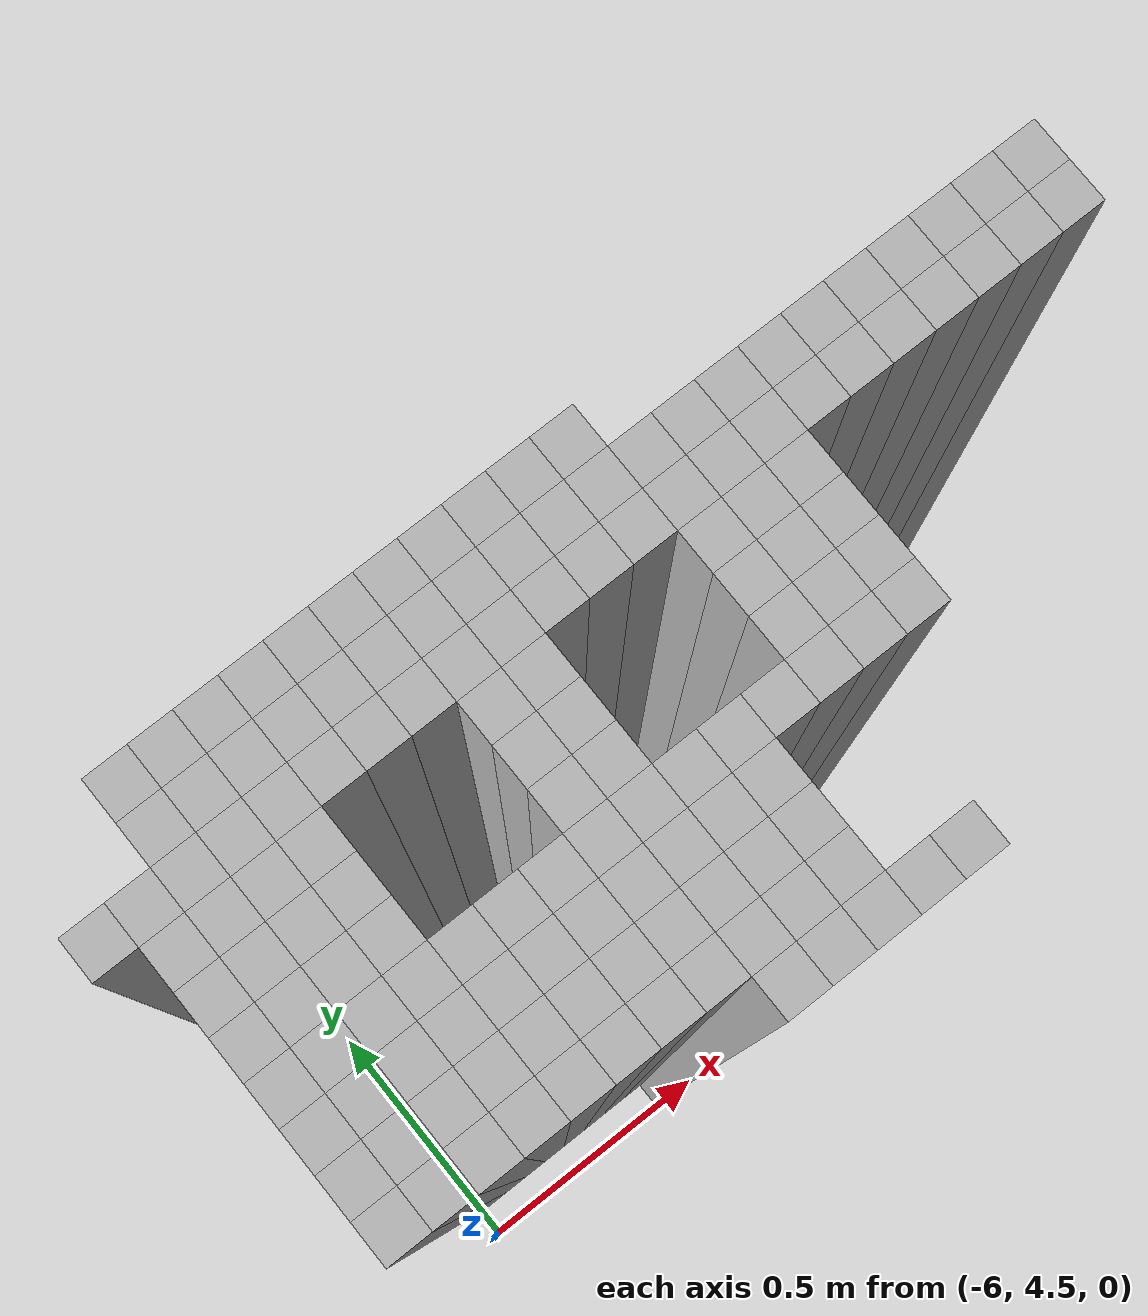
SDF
<sdf version="1.9">
 <world name="map_world">
  <model name="wall_105_53">
   <static>true</static>
   <pose>-5.911 5.030 1.250 0 0 0</pose>
   <link name="link">
    <collision name="collision"><geometry><box><size>0.050 0.050 2.500</size></box></geometry></collision>
    <visual name="visual"><geometry><box><size>0.050 0.050 2.500</size></box></geometry></visual>
   </link>
  </model>
  <model name="wall_106_53">
   <static>true</static>
   <pose>-5.861 5.030 1.250 0 0 0</pose>
   <link name="link">
    <collision name="collision"><geometry><box><size>0.050 0.050 2.500</size></box></geometry></collision>
    <visual name="visual"><geometry><box><size>0.050 0.050 2.500</size></box></geometry></visual>
   </link>
  </model>
  <model name="wall_107_53">
   <static>true</static>
   <pose>-5.811 5.030 1.250 0 0 0</pose>
   <link name="link">
    <collision name="collision"><geometry><box><size>0.050 0.050 2.500</size></box></geometry></collision>
    <visual name="visual"><geometry><box><size>0.050 0.050 2.500</size></box></geometry></visual>
   </link>
  </model>
  <model name="wall_108_53">
   <static>true</static>
   <pose>-5.761 5.030 1.250 0 0 0</pose>
   <link name="link">
    <collision name="collision"><geometry><box><size>0.050 0.050 2.500</size></box></geometry></collision>
    <visual name="visual"><geometry><box><size>0.050 0.050 2.500</size></box></geometry></visual>
   </link>
  </model>
  <model name="wall_109_53">
   <static>true</static>
   <pose>-5.711 5.030 1.250 0 0 0</pose>
   <link name="link">
    <collision name="collision"><geometry><box><size>0.050 0.050 2.500</size></box></geometry></collision>
    <visual name="visual"><geometry><box><size>0.050 0.050 2.500</size></box></geometry></visual>
   </link>
  </model>
  <model name="wall_110_53">
   <static>true</static>
   <pose>-5.661 5.030 1.250 0 0 0</pose>
   <link name="link">
    <collision name="collision"><geometry><box><size>0.050 0.050 2.500</size></box></geometry></collision>
    <visual name="visual"><geometry><box><size>0.050 0.050 2.500</size></box></geometry></visual>
   </link>
  </model>
  <model name="wall_111_53">
   <static>true</static>
   <pose>-5.611 5.030 1.250 0 0 0</pose>
   <link name="link">
    <collision name="collision"><geometry><box><size>0.050 0.050 2.500</size></box></geometry></collision>
    <visual name="visual"><geometry><box><size>0.050 0.050 2.500</size></box></geometry></visual>
   </link>
  </model>
  <model name="wall_112_53">
   <static>true</static>
   <pose>-5.561 5.030 1.250 0 0 0</pose>
   <link name="link">
    <collision name="collision"><geometry><box><size>0.050 0.050 2.500</size></box></geometry></collision>
    <visual name="visual"><geometry><box><size>0.050 0.050 2.500</size></box></geometry></visual>
   </link>
  </model>
  <model name="wall_113_53">
   <static>true</static>
   <pose>-5.511 5.030 1.250 0 0 0</pose>
   <link name="link">
    <collision name="collision"><geometry><box><size>0.050 0.050 2.500</size></box></geometry></collision>
    <visual name="visual"><geometry><box><size>0.050 0.050 2.500</size></box></geometry></visual>
   </link>
  </model>
  <model name="wall_114_53">
   <static>true</static>
   <pose>-5.461 5.030 1.250 0 0 0</pose>
   <link name="link">
    <collision name="collision"><geometry><box><size>0.050 0.050 2.500</size></box></geometry></collision>
    <visual name="visual"><geometry><box><size>0.050 0.050 2.500</size></box></geometry></visual>
   </link>
  </model>
  <model name="wall_115_53">
   <static>true</static>
   <pose>-5.411 5.030 1.250 0 0 0</pose>
   <link name="link">
    <collision name="collision"><geometry><box><size>0.050 0.050 2.500</size></box></geometry></collision>
    <visual name="visual"><geometry><box><size>0.050 0.050 2.500</size></box></geometry></visual>
   </link>
  </model>
  <model name="wall_105_54">
   <static>true</static>
   <pose>-5.911 4.980 1.250 0 0 0</pose>
   <link name="link">
    <collision name="collision"><geometry><box><size>0.050 0.050 2.500</size></box></geometry></collision>
    <visual name="visual"><geometry><box><size>0.050 0.050 2.500</size></box></geometry></visual>
   </link>
  </model>
  <model name="wall_106_54">
   <static>true</static>
   <pose>-5.861 4.980 1.250 0 0 0</pose>
   <link name="link">
    <collision name="collision"><geometry><box><size>0.050 0.050 2.500</size></box></geometry></collision>
    <visual name="visual"><geometry><box><size>0.050 0.050 2.500</size></box></geometry></visual>
   </link>
  </model>
  <model name="wall_107_54">
   <static>true</static>
   <pose>-5.811 4.980 1.250 0 0 0</pose>
   <link name="link">
    <collision name="collision"><geometry><box><size>0.050 0.050 2.500</size></box></geometry></collision>
    <visual name="visual"><geometry><box><size>0.050 0.050 2.500</size></box></geometry></visual>
   </link>
  </model>
  <model name="wall_108_54">
   <static>true</static>
   <pose>-5.761 4.980 1.250 0 0 0</pose>
   <link name="link">
    <collision name="collision"><geometry><box><size>0.050 0.050 2.500</size></box></geometry></collision>
    <visual name="visual"><geometry><box><size>0.050 0.050 2.500</size></box></geometry></visual>
   </link>
  </model>
  <model name="wall_109_54">
   <static>true</static>
   <pose>-5.711 4.980 1.250 0 0 0</pose>
   <link name="link">
    <collision name="collision"><geometry><box><size>0.050 0.050 2.500</size></box></geometry></collision>
    <visual name="visual"><geometry><box><size>0.050 0.050 2.500</size></box></geometry></visual>
   </link>
  </model>
  <model name="wall_110_54">
   <static>true</static>
   <pose>-5.661 4.980 1.250 0 0 0</pose>
   <link name="link">
    <collision name="collision"><geometry><box><size>0.050 0.050 2.500</size></box></geometry></collision>
    <visual name="visual"><geometry><box><size>0.050 0.050 2.500</size></box></geometry></visual>
   </link>
  </model>
  <model name="wall_111_54">
   <static>true</static>
   <pose>-5.611 4.980 1.250 0 0 0</pose>
   <link name="link">
    <collision name="collision"><geometry><box><size>0.050 0.050 2.500</size></box></geometry></collision>
    <visual name="visual"><geometry><box><size>0.050 0.050 2.500</size></box></geometry></visual>
   </link>
  </model>
  <model name="wall_112_54">
   <static>true</static>
   <pose>-5.561 4.980 1.250 0 0 0</pose>
   <link name="link">
    <collision name="collision"><geometry><box><size>0.050 0.050 2.500</size></box></geometry></collision>
    <visual name="visual"><geometry><box><size>0.050 0.050 2.500</size></box></geometry></visual>
   </link>
  </model>
  <model name="wall_113_54">
   <static>true</static>
   <pose>-5.511 4.980 1.250 0 0 0</pose>
   <link name="link">
    <collision name="collision"><geometry><box><size>0.050 0.050 2.500</size></box></geometry></collision>
    <visual name="visual"><geometry><box><size>0.050 0.050 2.500</size></box></geometry></visual>
   </link>
  </model>
  <model name="wall_114_54">
   <static>true</static>
   <pose>-5.461 4.980 1.250 0 0 0</pose>
   <link name="link">
    <collision name="collision"><geometry><box><size>0.050 0.050 2.500</size></box></geometry></collision>
    <visual name="visual"><geometry><box><size>0.050 0.050 2.500</size></box></geometry></visual>
   </link>
  </model>
  <model name="wall_115_54">
   <static>true</static>
   <pose>-5.411 4.980 1.250 0 0 0</pose>
   <link name="link">
    <collision name="collision"><geometry><box><size>0.050 0.050 2.500</size></box></geometry></collision>
    <visual name="visual"><geometry><box><size>0.050 0.050 2.500</size></box></geometry></visual>
   </link>
  </model>
  <model name="wall_116_54">
   <static>true</static>
   <pose>-5.361 4.980 1.250 0 0 0</pose>
   <link name="link">
    <collision name="collision"><geometry><box><size>0.050 0.050 2.500</size></box></geometry></collision>
    <visual name="visual"><geometry><box><size>0.050 0.050 2.500</size></box></geometry></visual>
   </link>
  </model>
  <model name="wall_117_54">
   <static>true</static>
   <pose>-5.311 4.980 1.250 0 0 0</pose>
   <link name="link">
    <collision name="collision"><geometry><box><size>0.050 0.050 2.500</size></box></geometry></collision>
    <visual name="visual"><geometry><box><size>0.050 0.050 2.500</size></box></geometry></visual>
   </link>
  </model>
  <model name="wall_118_54">
   <static>true</static>
   <pose>-5.261 4.980 1.250 0 0 0</pose>
   <link name="link">
    <collision name="collision"><geometry><box><size>0.050 0.050 2.500</size></box></geometry></collision>
    <visual name="visual"><geometry><box><size>0.050 0.050 2.500</size></box></geometry></visual>
   </link>
  </model>
  <model name="wall_119_54">
   <static>true</static>
   <pose>-5.211 4.980 1.250 0 0 0</pose>
   <link name="link">
    <collision name="collision"><geometry><box><size>0.050 0.050 2.500</size></box></geometry></collision>
    <visual name="visual"><geometry><box><size>0.050 0.050 2.500</size></box></geometry></visual>
   </link>
  </model>
  <model name="wall_120_54">
   <static>true</static>
   <pose>-5.161 4.980 1.250 0 0 0</pose>
   <link name="link">
    <collision name="collision"><geometry><box><size>0.050 0.050 2.500</size></box></geometry></collision>
    <visual name="visual"><geometry><box><size>0.050 0.050 2.500</size></box></geometry></visual>
   </link>
  </model>
  <model name="wall_121_54">
   <static>true</static>
   <pose>-5.111 4.980 1.250 0 0 0</pose>
   <link name="link">
    <collision name="collision"><geometry><box><size>0.050 0.050 2.500</size></box></geometry></collision>
    <visual name="visual"><geometry><box><size>0.050 0.050 2.500</size></box></geometry></visual>
   </link>
  </model>
  <model name="wall_122_54">
   <static>true</static>
   <pose>-5.061 4.980 1.250 0 0 0</pose>
   <link name="link">
    <collision name="collision"><geometry><box><size>0.050 0.050 2.500</size></box></geometry></collision>
    <visual name="visual"><geometry><box><size>0.050 0.050 2.500</size></box></geometry></visual>
   </link>
  </model>
  <model name="wall_123_54">
   <static>true</static>
   <pose>-5.011 4.980 1.250 0 0 0</pose>
   <link name="link">
    <collision name="collision"><geometry><box><size>0.050 0.050 2.500</size></box></geometry></collision>
    <visual name="visual"><geometry><box><size>0.050 0.050 2.500</size></box></geometry></visual>
   </link>
  </model>
  <model name="wall_124_54">
   <static>true</static>
   <pose>-4.961 4.980 1.250 0 0 0</pose>
   <link name="link">
    <collision name="collision"><geometry><box><size>0.050 0.050 2.500</size></box></geometry></collision>
    <visual name="visual"><geometry><box><size>0.050 0.050 2.500</size></box></geometry></visual>
   </link>
  </model>
  <model name="wall_125_54">
   <static>true</static>
   <pose>-4.911 4.980 1.250 0 0 0</pose>
   <link name="link">
    <collision name="collision"><geometry><box><size>0.050 0.050 2.500</size></box></geometry></collision>
    <visual name="visual"><geometry><box><size>0.050 0.050 2.500</size></box></geometry></visual>
   </link>
  </model>
  <model name="wall_103_55">
   <static>true</static>
   <pose>-6.011 4.930 1.250 0 0 0</pose>
   <link name="link">
    <collision name="collision"><geometry><box><size>0.050 0.050 2.500</size></box></geometry></collision>
    <visual name="visual"><geometry><box><size>0.050 0.050 2.500</size></box></geometry></visual>
   </link>
  </model>
  <model name="wall_104_55">
   <static>true</static>
   <pose>-5.961 4.930 1.250 0 0 0</pose>
   <link name="link">
    <collision name="collision"><geometry><box><size>0.050 0.050 2.500</size></box></geometry></collision>
    <visual name="visual"><geometry><box><size>0.050 0.050 2.500</size></box></geometry></visual>
   </link>
  </model>
  <model name="wall_105_55">
   <static>true</static>
   <pose>-5.911 4.930 1.250 0 0 0</pose>
   <link name="link">
    <collision name="collision"><geometry><box><size>0.050 0.050 2.500</size></box></geometry></collision>
    <visual name="visual"><geometry><box><size>0.050 0.050 2.500</size></box></geometry></visual>
   </link>
  </model>
  <model name="wall_106_55">
   <static>true</static>
   <pose>-5.861 4.930 1.250 0 0 0</pose>
   <link name="link">
    <collision name="collision"><geometry><box><size>0.050 0.050 2.500</size></box></geometry></collision>
    <visual name="visual"><geometry><box><size>0.050 0.050 2.500</size></box></geometry></visual>
   </link>
  </model>
  <model name="wall_107_55">
   <static>true</static>
   <pose>-5.811 4.930 1.250 0 0 0</pose>
   <link name="link">
    <collision name="collision"><geometry><box><size>0.050 0.050 2.500</size></box></geometry></collision>
    <visual name="visual"><geometry><box><size>0.050 0.050 2.500</size></box></geometry></visual>
   </link>
  </model>
  <model name="wall_108_55">
   <static>true</static>
   <pose>-5.761 4.930 1.250 0 0 0</pose>
   <link name="link">
    <collision name="collision"><geometry><box><size>0.050 0.050 2.500</size></box></geometry></collision>
    <visual name="visual"><geometry><box><size>0.050 0.050 2.500</size></box></geometry></visual>
   </link>
  </model>
  <model name="wall_109_55">
   <static>true</static>
   <pose>-5.711 4.930 1.250 0 0 0</pose>
   <link name="link">
    <collision name="collision"><geometry><box><size>0.050 0.050 2.500</size></box></geometry></collision>
    <visual name="visual"><geometry><box><size>0.050 0.050 2.500</size></box></geometry></visual>
   </link>
  </model>
  <model name="wall_110_55">
   <static>true</static>
   <pose>-5.661 4.930 1.250 0 0 0</pose>
   <link name="link">
    <collision name="collision"><geometry><box><size>0.050 0.050 2.500</size></box></geometry></collision>
    <visual name="visual"><geometry><box><size>0.050 0.050 2.500</size></box></geometry></visual>
   </link>
  </model>
  <model name="wall_111_55">
   <static>true</static>
   <pose>-5.611 4.930 1.250 0 0 0</pose>
   <link name="link">
    <collision name="collision"><geometry><box><size>0.050 0.050 2.500</size></box></geometry></collision>
    <visual name="visual"><geometry><box><size>0.050 0.050 2.500</size></box></geometry></visual>
   </link>
  </model>
  <model name="wall_112_55">
   <static>true</static>
   <pose>-5.561 4.930 1.250 0 0 0</pose>
   <link name="link">
    <collision name="collision"><geometry><box><size>0.050 0.050 2.500</size></box></geometry></collision>
    <visual name="visual"><geometry><box><size>0.050 0.050 2.500</size></box></geometry></visual>
   </link>
  </model>
  <model name="wall_113_55">
   <static>true</static>
   <pose>-5.511 4.930 1.250 0 0 0</pose>
   <link name="link">
    <collision name="collision"><geometry><box><size>0.050 0.050 2.500</size></box></geometry></collision>
    <visual name="visual"><geometry><box><size>0.050 0.050 2.500</size></box></geometry></visual>
   </link>
  </model>
  <model name="wall_114_55">
   <static>true</static>
   <pose>-5.461 4.930 1.250 0 0 0</pose>
   <link name="link">
    <collision name="collision"><geometry><box><size>0.050 0.050 2.500</size></box></geometry></collision>
    <visual name="visual"><geometry><box><size>0.050 0.050 2.500</size></box></geometry></visual>
   </link>
  </model>
  <model name="wall_115_55">
   <static>true</static>
   <pose>-5.411 4.930 1.250 0 0 0</pose>
   <link name="link">
    <collision name="collision"><geometry><box><size>0.050 0.050 2.500</size></box></geometry></collision>
    <visual name="visual"><geometry><box><size>0.050 0.050 2.500</size></box></geometry></visual>
   </link>
  </model>
  <model name="wall_116_55">
   <static>true</static>
   <pose>-5.361 4.930 1.250 0 0 0</pose>
   <link name="link">
    <collision name="collision"><geometry><box><size>0.050 0.050 2.500</size></box></geometry></collision>
    <visual name="visual"><geometry><box><size>0.050 0.050 2.500</size></box></geometry></visual>
   </link>
  </model>
  <model name="wall_117_55">
   <static>true</static>
   <pose>-5.311 4.930 1.250 0 0 0</pose>
   <link name="link">
    <collision name="collision"><geometry><box><size>0.050 0.050 2.500</size></box></geometry></collision>
    <visual name="visual"><geometry><box><size>0.050 0.050 2.500</size></box></geometry></visual>
   </link>
  </model>
  <model name="wall_118_55">
   <static>true</static>
   <pose>-5.261 4.930 1.250 0 0 0</pose>
   <link name="link">
    <collision name="collision"><geometry><box><size>0.050 0.050 2.500</size></box></geometry></collision>
    <visual name="visual"><geometry><box><size>0.050 0.050 2.500</size></box></geometry></visual>
   </link>
  </model>
  <model name="wall_119_55">
   <static>true</static>
   <pose>-5.211 4.930 1.250 0 0 0</pose>
   <link name="link">
    <collision name="collision"><geometry><box><size>0.050 0.050 2.500</size></box></geometry></collision>
    <visual name="visual"><geometry><box><size>0.050 0.050 2.500</size></box></geometry></visual>
   </link>
  </model>
  <model name="wall_120_55">
   <static>true</static>
   <pose>-5.161 4.930 1.250 0 0 0</pose>
   <link name="link">
    <collision name="collision"><geometry><box><size>0.050 0.050 2.500</size></box></geometry></collision>
    <visual name="visual"><geometry><box><size>0.050 0.050 2.500</size></box></geometry></visual>
   </link>
  </model>
  <model name="wall_121_55">
   <static>true</static>
   <pose>-5.111 4.930 1.250 0 0 0</pose>
   <link name="link">
    <collision name="collision"><geometry><box><size>0.050 0.050 2.500</size></box></geometry></collision>
    <visual name="visual"><geometry><box><size>0.050 0.050 2.500</size></box></geometry></visual>
   </link>
  </model>
  <model name="wall_122_55">
   <static>true</static>
   <pose>-5.061 4.930 1.250 0 0 0</pose>
   <link name="link">
    <collision name="collision"><geometry><box><size>0.050 0.050 2.500</size></box></geometry></collision>
    <visual name="visual"><geometry><box><size>0.050 0.050 2.500</size></box></geometry></visual>
   </link>
  </model>
  <model name="wall_123_55">
   <static>true</static>
   <pose>-5.011 4.930 1.250 0 0 0</pose>
   <link name="link">
    <collision name="collision"><geometry><box><size>0.050 0.050 2.500</size></box></geometry></collision>
    <visual name="visual"><geometry><box><size>0.050 0.050 2.500</size></box></geometry></visual>
   </link>
  </model>
  <model name="wall_124_55">
   <static>true</static>
   <pose>-4.961 4.930 1.250 0 0 0</pose>
   <link name="link">
    <collision name="collision"><geometry><box><size>0.050 0.050 2.500</size></box></geometry></collision>
    <visual name="visual"><geometry><box><size>0.050 0.050 2.500</size></box></geometry></visual>
   </link>
  </model>
  <model name="wall_125_55">
   <static>true</static>
   <pose>-4.911 4.930 1.250 0 0 0</pose>
   <link name="link">
    <collision name="collision"><geometry><box><size>0.050 0.050 2.500</size></box></geometry></collision>
    <visual name="visual"><geometry><box><size>0.050 0.050 2.500</size></box></geometry></visual>
   </link>
  </model>
  <model name="wall_104_56">
   <static>true</static>
   <pose>-5.961 4.880 1.250 0 0 0</pose>
   <link name="link">
    <collision name="collision"><geometry><box><size>0.050 0.050 2.500</size></box></geometry></collision>
    <visual name="visual"><geometry><box><size>0.050 0.050 2.500</size></box></geometry></visual>
   </link>
  </model>
  <model name="wall_105_56">
   <static>true</static>
   <pose>-5.911 4.880 1.250 0 0 0</pose>
   <link name="link">
    <collision name="collision"><geometry><box><size>0.050 0.050 2.500</size></box></geometry></collision>
    <visual name="visual"><geometry><box><size>0.050 0.050 2.500</size></box></geometry></visual>
   </link>
  </model>
  <model name="wall_106_56">
   <static>true</static>
   <pose>-5.861 4.880 1.250 0 0 0</pose>
   <link name="link">
    <collision name="collision"><geometry><box><size>0.050 0.050 2.500</size></box></geometry></collision>
    <visual name="visual"><geometry><box><size>0.050 0.050 2.500</size></box></geometry></visual>
   </link>
  </model>
  <model name="wall_107_56">
   <static>true</static>
   <pose>-5.811 4.880 1.250 0 0 0</pose>
   <link name="link">
    <collision name="collision"><geometry><box><size>0.050 0.050 2.500</size></box></geometry></collision>
    <visual name="visual"><geometry><box><size>0.050 0.050 2.500</size></box></geometry></visual>
   </link>
  </model>
  <model name="wall_111_56">
   <static>true</static>
   <pose>-5.611 4.880 1.250 0 0 0</pose>
   <link name="link">
    <collision name="collision"><geometry><box><size>0.050 0.050 2.500</size></box></geometry></collision>
    <visual name="visual"><geometry><box><size>0.050 0.050 2.500</size></box></geometry></visual>
   </link>
  </model>
  <model name="wall_112_56">
   <static>true</static>
   <pose>-5.561 4.880 1.250 0 0 0</pose>
   <link name="link">
    <collision name="collision"><geometry><box><size>0.050 0.050 2.500</size></box></geometry></collision>
    <visual name="visual"><geometry><box><size>0.050 0.050 2.500</size></box></geometry></visual>
   </link>
  </model>
  <model name="wall_116_56">
   <static>true</static>
   <pose>-5.361 4.880 1.250 0 0 0</pose>
   <link name="link">
    <collision name="collision"><geometry><box><size>0.050 0.050 2.500</size></box></geometry></collision>
    <visual name="visual"><geometry><box><size>0.050 0.050 2.500</size></box></geometry></visual>
   </link>
  </model>
  <model name="wall_117_56">
   <static>true</static>
   <pose>-5.311 4.880 1.250 0 0 0</pose>
   <link name="link">
    <collision name="collision"><geometry><box><size>0.050 0.050 2.500</size></box></geometry></collision>
    <visual name="visual"><geometry><box><size>0.050 0.050 2.500</size></box></geometry></visual>
   </link>
  </model>
  <model name="wall_118_56">
   <static>true</static>
   <pose>-5.261 4.880 1.250 0 0 0</pose>
   <link name="link">
    <collision name="collision"><geometry><box><size>0.050 0.050 2.500</size></box></geometry></collision>
    <visual name="visual"><geometry><box><size>0.050 0.050 2.500</size></box></geometry></visual>
   </link>
  </model>
  <model name="wall_104_57">
   <static>true</static>
   <pose>-5.961 4.830 1.250 0 0 0</pose>
   <link name="link">
    <collision name="collision"><geometry><box><size>0.050 0.050 2.500</size></box></geometry></collision>
    <visual name="visual"><geometry><box><size>0.050 0.050 2.500</size></box></geometry></visual>
   </link>
  </model>
  <model name="wall_105_57">
   <static>true</static>
   <pose>-5.911 4.830 1.250 0 0 0</pose>
   <link name="link">
    <collision name="collision"><geometry><box><size>0.050 0.050 2.500</size></box></geometry></collision>
    <visual name="visual"><geometry><box><size>0.050 0.050 2.500</size></box></geometry></visual>
   </link>
  </model>
  <model name="wall_106_57">
   <static>true</static>
   <pose>-5.861 4.830 1.250 0 0 0</pose>
   <link name="link">
    <collision name="collision"><geometry><box><size>0.050 0.050 2.500</size></box></geometry></collision>
    <visual name="visual"><geometry><box><size>0.050 0.050 2.500</size></box></geometry></visual>
   </link>
  </model>
  <model name="wall_107_57">
   <static>true</static>
   <pose>-5.811 4.830 1.250 0 0 0</pose>
   <link name="link">
    <collision name="collision"><geometry><box><size>0.050 0.050 2.500</size></box></geometry></collision>
    <visual name="visual"><geometry><box><size>0.050 0.050 2.500</size></box></geometry></visual>
   </link>
  </model>
  <model name="wall_111_57">
   <static>true</static>
   <pose>-5.611 4.830 1.250 0 0 0</pose>
   <link name="link">
    <collision name="collision"><geometry><box><size>0.050 0.050 2.500</size></box></geometry></collision>
    <visual name="visual"><geometry><box><size>0.050 0.050 2.500</size></box></geometry></visual>
   </link>
  </model>
  <model name="wall_112_57">
   <static>true</static>
   <pose>-5.561 4.830 1.250 0 0 0</pose>
   <link name="link">
    <collision name="collision"><geometry><box><size>0.050 0.050 2.500</size></box></geometry></collision>
    <visual name="visual"><geometry><box><size>0.050 0.050 2.500</size></box></geometry></visual>
   </link>
  </model>
  <model name="wall_116_57">
   <static>true</static>
   <pose>-5.361 4.830 1.250 0 0 0</pose>
   <link name="link">
    <collision name="collision"><geometry><box><size>0.050 0.050 2.500</size></box></geometry></collision>
    <visual name="visual"><geometry><box><size>0.050 0.050 2.500</size></box></geometry></visual>
   </link>
  </model>
  <model name="wall_117_57">
   <static>true</static>
   <pose>-5.311 4.830 1.250 0 0 0</pose>
   <link name="link">
    <collision name="collision"><geometry><box><size>0.050 0.050 2.500</size></box></geometry></collision>
    <visual name="visual"><geometry><box><size>0.050 0.050 2.500</size></box></geometry></visual>
   </link>
  </model>
  <model name="wall_118_57">
   <static>true</static>
   <pose>-5.261 4.830 1.250 0 0 0</pose>
   <link name="link">
    <collision name="collision"><geometry><box><size>0.050 0.050 2.500</size></box></geometry></collision>
    <visual name="visual"><geometry><box><size>0.050 0.050 2.500</size></box></geometry></visual>
   </link>
  </model>
  <model name="wall_104_58">
   <static>true</static>
   <pose>-5.961 4.780 1.250 0 0 0</pose>
   <link name="link">
    <collision name="collision"><geometry><box><size>0.050 0.050 2.500</size></box></geometry></collision>
    <visual name="visual"><geometry><box><size>0.050 0.050 2.500</size></box></geometry></visual>
   </link>
  </model>
  <model name="wall_105_58">
   <static>true</static>
   <pose>-5.911 4.780 1.250 0 0 0</pose>
   <link name="link">
    <collision name="collision"><geometry><box><size>0.050 0.050 2.500</size></box></geometry></collision>
    <visual name="visual"><geometry><box><size>0.050 0.050 2.500</size></box></geometry></visual>
   </link>
  </model>
  <model name="wall_106_58">
   <static>true</static>
   <pose>-5.861 4.780 1.250 0 0 0</pose>
   <link name="link">
    <collision name="collision"><geometry><box><size>0.050 0.050 2.500</size></box></geometry></collision>
    <visual name="visual"><geometry><box><size>0.050 0.050 2.500</size></box></geometry></visual>
   </link>
  </model>
  <model name="wall_107_58">
   <static>true</static>
   <pose>-5.811 4.780 1.250 0 0 0</pose>
   <link name="link">
    <collision name="collision"><geometry><box><size>0.050 0.050 2.500</size></box></geometry></collision>
    <visual name="visual"><geometry><box><size>0.050 0.050 2.500</size></box></geometry></visual>
   </link>
  </model>
  <model name="wall_111_58">
   <static>true</static>
   <pose>-5.611 4.780 1.250 0 0 0</pose>
   <link name="link">
    <collision name="collision"><geometry><box><size>0.050 0.050 2.500</size></box></geometry></collision>
    <visual name="visual"><geometry><box><size>0.050 0.050 2.500</size></box></geometry></visual>
   </link>
  </model>
  <model name="wall_112_58">
   <static>true</static>
   <pose>-5.561 4.780 1.250 0 0 0</pose>
   <link name="link">
    <collision name="collision"><geometry><box><size>0.050 0.050 2.500</size></box></geometry></collision>
    <visual name="visual"><geometry><box><size>0.050 0.050 2.500</size></box></geometry></visual>
   </link>
  </model>
  <model name="wall_116_58">
   <static>true</static>
   <pose>-5.361 4.780 1.250 0 0 0</pose>
   <link name="link">
    <collision name="collision"><geometry><box><size>0.050 0.050 2.500</size></box></geometry></collision>
    <visual name="visual"><geometry><box><size>0.050 0.050 2.500</size></box></geometry></visual>
   </link>
  </model>
  <model name="wall_117_58">
   <static>true</static>
   <pose>-5.311 4.780 1.250 0 0 0</pose>
   <link name="link">
    <collision name="collision"><geometry><box><size>0.050 0.050 2.500</size></box></geometry></collision>
    <visual name="visual"><geometry><box><size>0.050 0.050 2.500</size></box></geometry></visual>
   </link>
  </model>
  <model name="wall_118_58">
   <static>true</static>
   <pose>-5.261 4.780 1.250 0 0 0</pose>
   <link name="link">
    <collision name="collision"><geometry><box><size>0.050 0.050 2.500</size></box></geometry></collision>
    <visual name="visual"><geometry><box><size>0.050 0.050 2.500</size></box></geometry></visual>
   </link>
  </model>
  <model name="wall_104_59">
   <static>true</static>
   <pose>-5.961 4.730 1.250 0 0 0</pose>
   <link name="link">
    <collision name="collision"><geometry><box><size>0.050 0.050 2.500</size></box></geometry></collision>
    <visual name="visual"><geometry><box><size>0.050 0.050 2.500</size></box></geometry></visual>
   </link>
  </model>
  <model name="wall_105_59">
   <static>true</static>
   <pose>-5.911 4.730 1.250 0 0 0</pose>
   <link name="link">
    <collision name="collision"><geometry><box><size>0.050 0.050 2.500</size></box></geometry></collision>
    <visual name="visual"><geometry><box><size>0.050 0.050 2.500</size></box></geometry></visual>
   </link>
  </model>
  <model name="wall_106_59">
   <static>true</static>
   <pose>-5.861 4.730 1.250 0 0 0</pose>
   <link name="link">
    <collision name="collision"><geometry><box><size>0.050 0.050 2.500</size></box></geometry></collision>
    <visual name="visual"><geometry><box><size>0.050 0.050 2.500</size></box></geometry></visual>
   </link>
  </model>
  <model name="wall_107_59">
   <static>true</static>
   <pose>-5.811 4.730 1.250 0 0 0</pose>
   <link name="link">
    <collision name="collision"><geometry><box><size>0.050 0.050 2.500</size></box></geometry></collision>
    <visual name="visual"><geometry><box><size>0.050 0.050 2.500</size></box></geometry></visual>
   </link>
  </model>
  <model name="wall_108_59">
   <static>true</static>
   <pose>-5.761 4.730 1.250 0 0 0</pose>
   <link name="link">
    <collision name="collision"><geometry><box><size>0.050 0.050 2.500</size></box></geometry></collision>
    <visual name="visual"><geometry><box><size>0.050 0.050 2.500</size></box></geometry></visual>
   </link>
  </model>
  <model name="wall_109_59">
   <static>true</static>
   <pose>-5.711 4.730 1.250 0 0 0</pose>
   <link name="link">
    <collision name="collision"><geometry><box><size>0.050 0.050 2.500</size></box></geometry></collision>
    <visual name="visual"><geometry><box><size>0.050 0.050 2.500</size></box></geometry></visual>
   </link>
  </model>
  <model name="wall_110_59">
   <static>true</static>
   <pose>-5.661 4.730 1.250 0 0 0</pose>
   <link name="link">
    <collision name="collision"><geometry><box><size>0.050 0.050 2.500</size></box></geometry></collision>
    <visual name="visual"><geometry><box><size>0.050 0.050 2.500</size></box></geometry></visual>
   </link>
  </model>
  <model name="wall_111_59">
   <static>true</static>
   <pose>-5.611 4.730 1.250 0 0 0</pose>
   <link name="link">
    <collision name="collision"><geometry><box><size>0.050 0.050 2.500</size></box></geometry></collision>
    <visual name="visual"><geometry><box><size>0.050 0.050 2.500</size></box></geometry></visual>
   </link>
  </model>
  <model name="wall_112_59">
   <static>true</static>
   <pose>-5.561 4.730 1.250 0 0 0</pose>
   <link name="link">
    <collision name="collision"><geometry><box><size>0.050 0.050 2.500</size></box></geometry></collision>
    <visual name="visual"><geometry><box><size>0.050 0.050 2.500</size></box></geometry></visual>
   </link>
  </model>
  <model name="wall_113_59">
   <static>true</static>
   <pose>-5.511 4.730 1.250 0 0 0</pose>
   <link name="link">
    <collision name="collision"><geometry><box><size>0.050 0.050 2.500</size></box></geometry></collision>
    <visual name="visual"><geometry><box><size>0.050 0.050 2.500</size></box></geometry></visual>
   </link>
  </model>
  <model name="wall_114_59">
   <static>true</static>
   <pose>-5.461 4.730 1.250 0 0 0</pose>
   <link name="link">
    <collision name="collision"><geometry><box><size>0.050 0.050 2.500</size></box></geometry></collision>
    <visual name="visual"><geometry><box><size>0.050 0.050 2.500</size></box></geometry></visual>
   </link>
  </model>
  <model name="wall_115_59">
   <static>true</static>
   <pose>-5.411 4.730 1.250 0 0 0</pose>
   <link name="link">
    <collision name="collision"><geometry><box><size>0.050 0.050 2.500</size></box></geometry></collision>
    <visual name="visual"><geometry><box><size>0.050 0.050 2.500</size></box></geometry></visual>
   </link>
  </model>
  <model name="wall_116_59">
   <static>true</static>
   <pose>-5.361 4.730 1.250 0 0 0</pose>
   <link name="link">
    <collision name="collision"><geometry><box><size>0.050 0.050 2.500</size></box></geometry></collision>
    <visual name="visual"><geometry><box><size>0.050 0.050 2.500</size></box></geometry></visual>
   </link>
  </model>
  <model name="wall_117_59">
   <static>true</static>
   <pose>-5.311 4.730 1.250 0 0 0</pose>
   <link name="link">
    <collision name="collision"><geometry><box><size>0.050 0.050 2.500</size></box></geometry></collision>
    <visual name="visual"><geometry><box><size>0.050 0.050 2.500</size></box></geometry></visual>
   </link>
  </model>
  <model name="wall_118_59">
   <static>true</static>
   <pose>-5.261 4.730 1.250 0 0 0</pose>
   <link name="link">
    <collision name="collision"><geometry><box><size>0.050 0.050 2.500</size></box></geometry></collision>
    <visual name="visual"><geometry><box><size>0.050 0.050 2.500</size></box></geometry></visual>
   </link>
  </model>
  <model name="wall_104_60">
   <static>true</static>
   <pose>-5.961 4.680 1.250 0 0 0</pose>
   <link name="link">
    <collision name="collision"><geometry><box><size>0.050 0.050 2.500</size></box></geometry></collision>
    <visual name="visual"><geometry><box><size>0.050 0.050 2.500</size></box></geometry></visual>
   </link>
  </model>
  <model name="wall_105_60">
   <static>true</static>
   <pose>-5.911 4.680 1.250 0 0 0</pose>
   <link name="link">
    <collision name="collision"><geometry><box><size>0.050 0.050 2.500</size></box></geometry></collision>
    <visual name="visual"><geometry><box><size>0.050 0.050 2.500</size></box></geometry></visual>
   </link>
  </model>
  <model name="wall_106_60">
   <static>true</static>
   <pose>-5.861 4.680 1.250 0 0 0</pose>
   <link name="link">
    <collision name="collision"><geometry><box><size>0.050 0.050 2.500</size></box></geometry></collision>
    <visual name="visual"><geometry><box><size>0.050 0.050 2.500</size></box></geometry></visual>
   </link>
  </model>
  <model name="wall_107_60">
   <static>true</static>
   <pose>-5.811 4.680 1.250 0 0 0</pose>
   <link name="link">
    <collision name="collision"><geometry><box><size>0.050 0.050 2.500</size></box></geometry></collision>
    <visual name="visual"><geometry><box><size>0.050 0.050 2.500</size></box></geometry></visual>
   </link>
  </model>
  <model name="wall_108_60">
   <static>true</static>
   <pose>-5.761 4.680 1.250 0 0 0</pose>
   <link name="link">
    <collision name="collision"><geometry><box><size>0.050 0.050 2.500</size></box></geometry></collision>
    <visual name="visual"><geometry><box><size>0.050 0.050 2.500</size></box></geometry></visual>
   </link>
  </model>
  <model name="wall_109_60">
   <static>true</static>
   <pose>-5.711 4.680 1.250 0 0 0</pose>
   <link name="link">
    <collision name="collision"><geometry><box><size>0.050 0.050 2.500</size></box></geometry></collision>
    <visual name="visual"><geometry><box><size>0.050 0.050 2.500</size></box></geometry></visual>
   </link>
  </model>
  <model name="wall_110_60">
   <static>true</static>
   <pose>-5.661 4.680 1.250 0 0 0</pose>
   <link name="link">
    <collision name="collision"><geometry><box><size>0.050 0.050 2.500</size></box></geometry></collision>
    <visual name="visual"><geometry><box><size>0.050 0.050 2.500</size></box></geometry></visual>
   </link>
  </model>
  <model name="wall_111_60">
   <static>true</static>
   <pose>-5.611 4.680 1.250 0 0 0</pose>
   <link name="link">
    <collision name="collision"><geometry><box><size>0.050 0.050 2.500</size></box></geometry></collision>
    <visual name="visual"><geometry><box><size>0.050 0.050 2.500</size></box></geometry></visual>
   </link>
  </model>
  <model name="wall_112_60">
   <static>true</static>
   <pose>-5.561 4.680 1.250 0 0 0</pose>
   <link name="link">
    <collision name="collision"><geometry><box><size>0.050 0.050 2.500</size></box></geometry></collision>
    <visual name="visual"><geometry><box><size>0.050 0.050 2.500</size></box></geometry></visual>
   </link>
  </model>
  <model name="wall_113_60">
   <static>true</static>
   <pose>-5.511 4.680 1.250 0 0 0</pose>
   <link name="link">
    <collision name="collision"><geometry><box><size>0.050 0.050 2.500</size></box></geometry></collision>
    <visual name="visual"><geometry><box><size>0.050 0.050 2.500</size></box></geometry></visual>
   </link>
  </model>
  <model name="wall_114_60">
   <static>true</static>
   <pose>-5.461 4.680 1.250 0 0 0</pose>
   <link name="link">
    <collision name="collision"><geometry><box><size>0.050 0.050 2.500</size></box></geometry></collision>
    <visual name="visual"><geometry><box><size>0.050 0.050 2.500</size></box></geometry></visual>
   </link>
  </model>
  <model name="wall_104_61">
   <static>true</static>
   <pose>-5.961 4.630 1.250 0 0 0</pose>
   <link name="link">
    <collision name="collision"><geometry><box><size>0.050 0.050 2.500</size></box></geometry></collision>
    <visual name="visual"><geometry><box><size>0.050 0.050 2.500</size></box></geometry></visual>
   </link>
  </model>
  <model name="wall_105_61">
   <static>true</static>
   <pose>-5.911 4.630 1.250 0 0 0</pose>
   <link name="link">
    <collision name="collision"><geometry><box><size>0.050 0.050 2.500</size></box></geometry></collision>
    <visual name="visual"><geometry><box><size>0.050 0.050 2.500</size></box></geometry></visual>
   </link>
  </model>
  <model name="wall_106_61">
   <static>true</static>
   <pose>-5.861 4.630 1.250 0 0 0</pose>
   <link name="link">
    <collision name="collision"><geometry><box><size>0.050 0.050 2.500</size></box></geometry></collision>
    <visual name="visual"><geometry><box><size>0.050 0.050 2.500</size></box></geometry></visual>
   </link>
  </model>
  <model name="wall_107_61">
   <static>true</static>
   <pose>-5.811 4.630 1.250 0 0 0</pose>
   <link name="link">
    <collision name="collision"><geometry><box><size>0.050 0.050 2.500</size></box></geometry></collision>
    <visual name="visual"><geometry><box><size>0.050 0.050 2.500</size></box></geometry></visual>
   </link>
  </model>
  <model name="wall_108_61">
   <static>true</static>
   <pose>-5.761 4.630 1.250 0 0 0</pose>
   <link name="link">
    <collision name="collision"><geometry><box><size>0.050 0.050 2.500</size></box></geometry></collision>
    <visual name="visual"><geometry><box><size>0.050 0.050 2.500</size></box></geometry></visual>
   </link>
  </model>
  <model name="wall_109_61">
   <static>true</static>
   <pose>-5.711 4.630 1.250 0 0 0</pose>
   <link name="link">
    <collision name="collision"><geometry><box><size>0.050 0.050 2.500</size></box></geometry></collision>
    <visual name="visual"><geometry><box><size>0.050 0.050 2.500</size></box></geometry></visual>
   </link>
  </model>
  <model name="wall_110_61">
   <static>true</static>
   <pose>-5.661 4.630 1.250 0 0 0</pose>
   <link name="link">
    <collision name="collision"><geometry><box><size>0.050 0.050 2.500</size></box></geometry></collision>
    <visual name="visual"><geometry><box><size>0.050 0.050 2.500</size></box></geometry></visual>
   </link>
  </model>
  <model name="wall_111_61">
   <static>true</static>
   <pose>-5.611 4.630 1.250 0 0 0</pose>
   <link name="link">
    <collision name="collision"><geometry><box><size>0.050 0.050 2.500</size></box></geometry></collision>
    <visual name="visual"><geometry><box><size>0.050 0.050 2.500</size></box></geometry></visual>
   </link>
  </model>
  <model name="wall_112_61">
   <static>true</static>
   <pose>-5.561 4.630 1.250 0 0 0</pose>
   <link name="link">
    <collision name="collision"><geometry><box><size>0.050 0.050 2.500</size></box></geometry></collision>
    <visual name="visual"><geometry><box><size>0.050 0.050 2.500</size></box></geometry></visual>
   </link>
  </model>
  <model name="wall_113_61">
   <static>true</static>
   <pose>-5.511 4.630 1.250 0 0 0</pose>
   <link name="link">
    <collision name="collision"><geometry><box><size>0.050 0.050 2.500</size></box></geometry></collision>
    <visual name="visual"><geometry><box><size>0.050 0.050 2.500</size></box></geometry></visual>
   </link>
  </model>
  <model name="wall_114_61">
   <static>true</static>
   <pose>-5.461 4.630 1.250 0 0 0</pose>
   <link name="link">
    <collision name="collision"><geometry><box><size>0.050 0.050 2.500</size></box></geometry></collision>
    <visual name="visual"><geometry><box><size>0.050 0.050 2.500</size></box></geometry></visual>
   </link>
  </model>
  <model name="wall_104_62">
   <static>true</static>
   <pose>-5.961 4.580 1.250 0 0 0</pose>
   <link name="link">
    <collision name="collision"><geometry><box><size>0.050 0.050 2.500</size></box></geometry></collision>
    <visual name="visual"><geometry><box><size>0.050 0.050 2.500</size></box></geometry></visual>
   </link>
  </model>
  <model name="wall_105_62">
   <static>true</static>
   <pose>-5.911 4.580 1.250 0 0 0</pose>
   <link name="link">
    <collision name="collision"><geometry><box><size>0.050 0.050 2.500</size></box></geometry></collision>
    <visual name="visual"><geometry><box><size>0.050 0.050 2.500</size></box></geometry></visual>
   </link>
  </model>
  <model name="wall_106_62">
   <static>true</static>
   <pose>-5.861 4.580 1.250 0 0 0</pose>
   <link name="link">
    <collision name="collision"><geometry><box><size>0.050 0.050 2.500</size></box></geometry></collision>
    <visual name="visual"><geometry><box><size>0.050 0.050 2.500</size></box></geometry></visual>
   </link>
  </model>
  <model name="wall_107_62">
   <static>true</static>
   <pose>-5.811 4.580 1.250 0 0 0</pose>
   <link name="link">
    <collision name="collision"><geometry><box><size>0.050 0.050 2.500</size></box></geometry></collision>
    <visual name="visual"><geometry><box><size>0.050 0.050 2.500</size></box></geometry></visual>
   </link>
  </model>
  <model name="wall_108_62">
   <static>true</static>
   <pose>-5.761 4.580 1.250 0 0 0</pose>
   <link name="link">
    <collision name="collision"><geometry><box><size>0.050 0.050 2.500</size></box></geometry></collision>
    <visual name="visual"><geometry><box><size>0.050 0.050 2.500</size></box></geometry></visual>
   </link>
  </model>
  <model name="wall_109_62">
   <static>true</static>
   <pose>-5.711 4.580 1.250 0 0 0</pose>
   <link name="link">
    <collision name="collision"><geometry><box><size>0.050 0.050 2.500</size></box></geometry></collision>
    <visual name="visual"><geometry><box><size>0.050 0.050 2.500</size></box></geometry></visual>
   </link>
  </model>
  <model name="wall_110_62">
   <static>true</static>
   <pose>-5.661 4.580 1.250 0 0 0</pose>
   <link name="link">
    <collision name="collision"><geometry><box><size>0.050 0.050 2.500</size></box></geometry></collision>
    <visual name="visual"><geometry><box><size>0.050 0.050 2.500</size></box></geometry></visual>
   </link>
  </model>
  <model name="wall_111_62">
   <static>true</static>
   <pose>-5.611 4.580 1.250 0 0 0</pose>
   <link name="link">
    <collision name="collision"><geometry><box><size>0.050 0.050 2.500</size></box></geometry></collision>
    <visual name="visual"><geometry><box><size>0.050 0.050 2.500</size></box></geometry></visual>
   </link>
  </model>
  <model name="wall_112_62">
   <static>true</static>
   <pose>-5.561 4.580 1.250 0 0 0</pose>
   <link name="link">
    <collision name="collision"><geometry><box><size>0.050 0.050 2.500</size></box></geometry></collision>
    <visual name="visual"><geometry><box><size>0.050 0.050 2.500</size></box></geometry></visual>
   </link>
  </model>
  <model name="wall_113_62">
   <static>true</static>
   <pose>-5.511 4.580 1.250 0 0 0</pose>
   <link name="link">
    <collision name="collision"><geometry><box><size>0.050 0.050 2.500</size></box></geometry></collision>
    <visual name="visual"><geometry><box><size>0.050 0.050 2.500</size></box></geometry></visual>
   </link>
  </model>
  <model name="wall_114_62">
   <static>true</static>
   <pose>-5.461 4.580 1.250 0 0 0</pose>
   <link name="link">
    <collision name="collision"><geometry><box><size>0.050 0.050 2.500</size></box></geometry></collision>
    <visual name="visual"><geometry><box><size>0.050 0.050 2.500</size></box></geometry></visual>
   </link>
  </model>
  <model name="wall_112_63">
   <static>true</static>
   <pose>-5.561 4.530 1.250 0 0 0</pose>
   <link name="link">
    <collision name="collision"><geometry><box><size>0.050 0.050 2.500</size></box></geometry></collision>
    <visual name="visual"><geometry><box><size>0.050 0.050 2.500</size></box></geometry></visual>
   </link>
  </model>
  <model name="wall_113_63">
   <static>true</static>
   <pose>-5.511 4.530 1.250 0 0 0</pose>
   <link name="link">
    <collision name="collision"><geometry><box><size>0.050 0.050 2.500</size></box></geometry></collision>
    <visual name="visual"><geometry><box><size>0.050 0.050 2.500</size></box></geometry></visual>
   </link>
  </model>
  <model name="wall_114_63">
   <static>true</static>
   <pose>-5.461 4.530 1.250 0 0 0</pose>
   <link name="link">
    <collision name="collision"><geometry><box><size>0.050 0.050 2.500</size></box></geometry></collision>
    <visual name="visual"><geometry><box><size>0.050 0.050 2.500</size></box></geometry></visual>
   </link>
  </model>
  <model name="wall_115_63">
   <static>true</static>
   <pose>-5.411 4.530 1.250 0 0 0</pose>
   <link name="link">
    <collision name="collision"><geometry><box><size>0.050 0.050 2.500</size></box></geometry></collision>
    <visual name="visual"><geometry><box><size>0.050 0.050 2.500</size></box></geometry></visual>
   </link>
  </model>
  <model name="wall_116_63">
   <static>true</static>
   <pose>-5.361 4.530 1.250 0 0 0</pose>
   <link name="link">
    <collision name="collision"><geometry><box><size>0.050 0.050 2.500</size></box></geometry></collision>
    <visual name="visual"><geometry><box><size>0.050 0.050 2.500</size></box></geometry></visual>
   </link>
  </model>
 </world>
</sdf>
